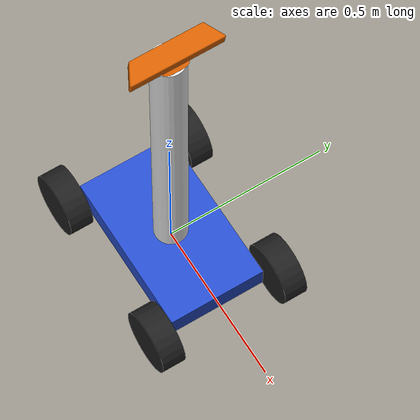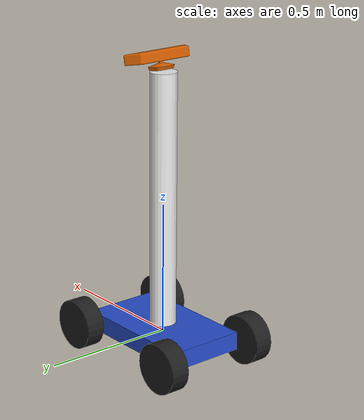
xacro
<?xml version="1.0" ?>
<robot name="my_robot" xmlns:xacro="http://www.ros.org/wiki/xacro">
  <!-- PROPERTY LIST -->
  <!--All units in m-kg-s-radians unit system -->
  <xacro:property name="M_PI" value="3.1415926535897931" />
  <xacro:property name="M_PI_2" value="1.570796327" />
  <xacro:property name="DEG_TO_RAD" value="0.017453293" />

  <!-- FILE INCLUDES -->
  <xacro:include filename="$(find my_robot)/urdf/materials.xacro" />
  <xacro:include filename="$(find my_robot)/urdf/my_robot.gazebo" />
  <xacro:include filename="$(find my_robot)/urdf/macros.xacro" />

    <!-- Camera tilt of the wheelchair -->
  <xacro:property name="tilt" value="0.174533" /> <!-- 10 degree-->

    <!-- Main Chassis Box Dimensions -->
    <xacro:property name="chassis_length" value="0.5" />
    <xacro:property name="chassis_width" value="0.3" />
    <xacro:property name="chassis_height" value="0.07" />
    <xacro:property name="chassis_mass" value="5.5" /><!-- in kg-->

  <!-- Wheels  Property-->
  <xacro:property name="wheel_radius" value="0.095" />
  <xacro:property name="wheel_length" value="0.072" />
  <xacro:property name="wheel_mass" value="0.82" /> <!-- in kg-->
  <xacro:property name="wheel_x_travel" value="${chassis_length/2.0}" /> <!-- in kg-->
  <xacro:property name="wheel_y_travel" value="0.2" /> <!-- in kg-->

    <!-- caster wheel radius and height -->
  <!-- caster wheel mass -->

  <!-- Main Body Cylinder    -->
 <xacro:property name="cylinder_height" value="1" />
 <xacro:property name="cylinder_radius" value="0.05" />
 <xacro:property name="cylinder_mass" value="0.5" /> <!-- in kg-->

    <!-- BASE-FOOTPRINT -->
    <!-- base_footprint is a fictitious link(frame) that is on the ground right below base_link origin -->
    <link name="base_footprint"/>

    <joint name="base_footprint_joint" type="fixed">
        <parent link="base_footprint"/>
        <child link="link_chassis" />
    </joint>

    <link name="link_chassis">
        <inertial>
            <mass value="${chassis_mass}"/>
            <origin rpy="0 0 0" xyz="0 0 0.1"/>
            <inertia ixx="0.0395416666667" ixy="0" ixz="0" iyy="0.106208333333" iyz="0" izz="0.106208333333"/>
        </inertial>
        <!-- body -->
        <collision name="collision_chassis">
            <geometry>
            <box size="${chassis_length} ${chassis_width} ${chassis_height}"/>
            </geometry>
        </collision>
        <visual>
            <origin rpy="0 0 0" xyz="0 0 0"/>
            <geometry>
            <box size="${chassis_length} ${chassis_width} ${chassis_height}"/>
            </geometry>
            <material name="blue"/>
        </visual>
    </link>

<!--          iyy="0.001" iyz="0.0"-->

<!--    &lt;!&ndash;Added for ball linke joint &ndash;&gt;-->
<!--                     iyy="0.001" iyz="0.0"-->

<!--                     iyy="0.001" iyz="0.0"-->

    <link name="sensor_base">
        <inertial>
            <origin xyz="0 0 ${cylinder_height/2.0}" rpy="0 0 0" />
            <mass value="${cylinder_mass}" />
            <xacro:cylinder_inertia mass="${cylinder_mass}" r="${cylinder_radius}" l="${cylinder_height}" />
        </inertial>
        <visual>
            <origin xyz="0 0 ${cylinder_height/2.0}" rpy="0 0 0" />
            <geometry>
            <cylinder radius="${cylinder_radius}" length="${cylinder_height}"/>
            </geometry>
            <material name="white" />
        </visual>
        <collision>
            <origin xyz="0 0 ${cylinder_height/2.0}" rpy="0 0 0"/>
            <geometry>
            <cylinder radius="${cylinder_radius}" length="${cylinder_height}"/>
            </geometry>
        </collision>
    </link>

   <joint name="joint_sensor_laser" type="fixed">
       <origin xyz="0.0 0 0" rpy="0 0 0"/>
       <parent link="link_chassis"/>
       <child link="sensor_base"/>
   </joint>

    <!-- Kinect -->
    <joint name="camera_rgb_joint" type="fixed">
        <origin xyz="0.05 0 ${cylinder_height+0.05}" rpy="0 ${tilt} 0"/>
        <parent link="sensor_base"/>
        <child link="camera_rgb_frame" />
    </joint>

    <link name="camera_rgb_frame"/>

    <joint name="camera_rgb_optical_joint" type="fixed">
        <origin xyz="0 0 0" rpy="${-M_PI/2} 0 ${-M_PI/2}" />
        <parent link="camera_rgb_frame" />
        <child link="camera_rgb_optical_frame" />
    </joint>

    <link name="camera_rgb_optical_frame"/>

    <joint name="camera_joint" type="fixed">
        <origin xyz="-0.031 0 -0.016" rpy="0 0 0"/>
        <parent link="camera_rgb_frame"/>
        <child link="camera_link"/>
    </joint>

    <link name="camera_link">
        <visual>
            <origin xyz="0 0 0" rpy="0 0 ${M_PI/2}"/>
            <geometry>
                <mesh filename="package://my_robot/meshes/kinect.dae"/>
            </geometry>
        </visual>
        <collision>
            <origin xyz="0.0 0.0 0.0" rpy="0 0 0"/>
            <geometry>
             <box size="0.07271 0.27794 0.073"/>
            </geometry>
        </collision>
        <inertial>
            <mass value="0.564" />
            <origin xyz="0 0 0" />
            <inertia ixx="0.003881243" ixy="0.0" ixz="0.0"
                    iyy="0.000498940" iyz="0.0"
                    izz="0.003879257" />
        </inertial>
    </link>

    <joint name="camera_depth_joint" type="fixed">
        <origin xyz="0 0 0" rpy="0 0 0" />
        <parent link="camera_rgb_frame" />
        <child link="camera_depth_frame" />
    </joint>

    <link name="camera_depth_frame"/>

    <joint name="camera_depth_optical_joint" type="fixed">
        <origin xyz="0 0 0" rpy="${-M_PI/2} 0 ${-M_PI/2}" />
        <parent link="camera_depth_frame" />
        <child link="camera_depth_optical_frame" />
    </joint>

    <link name="camera_depth_optical_frame"/>

    <xacro:link_wheel name="link_right_rear_wheel" radius="${wheel_radius}" length="${wheel_length}" mass="${wheel_mass}" />
    <xacro:joint_wheel name="joint_right_rear_wheel" child="link_right_rear_wheel" origin_xyz="-${wheel_x_travel} ${wheel_y_travel} 0" />

    <xacro:link_wheel name="link_left_rear_wheel" radius="${wheel_radius}" length="${wheel_length}" mass="${wheel_mass}" />
    <xacro:joint_wheel name="joint_left_rear_wheel" child="link_left_rear_wheel" origin_xyz="-${wheel_x_travel} -${wheel_y_travel} 0" />

    <xacro:link_wheel name="link_right_front_wheel" radius="${wheel_radius}" length="${wheel_length}" mass="${wheel_mass}" />
    <xacro:joint_wheel name="joint_right_front_wheel" child="link_right_front_wheel" origin_xyz=" ${wheel_x_travel} ${wheel_y_travel} 0" />

    <xacro:link_wheel name="link_left_front_wheel" radius="${wheel_radius}" length="${wheel_length}" mass="${wheel_mass}" />
    <xacro:joint_wheel name="joint_left_front_wheel" child="link_left_front_wheel" origin_xyz=" ${wheel_x_travel} -${wheel_y_travel} 0" />

</robot>

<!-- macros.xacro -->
<robot xmlns:xacro="http://www.ros.org/wiki/xacro">

    <!-- These constants are used to simulate a  Savox SV-0235MG servo operated at
     7.4 V. servo_stall_torque is measured in N m. servo_no_load_speed is
     measured in rad/s. -->
    <!-- produces 486.1 oz-in = 3.432620346181713 n-m of torque -->
    <!-- no load speed 0.13 sec/60 deg -> (1/0.13)*60 deg/sec = 8.05536578 rad/s -->
    <xacro:property name="servo_stall_torque" value="3.432620346181713"/>
    <xacro:property name="servo_no_load_speed" value="8.05536578"/>
    <xacro:property name="PI" value="3.14"/>

    <xacro:macro name="cylinder_inertia_new" params ="m r h">
        <inertial>
            <mass value="${m}"/>
            <inertia ixx="${m*(3*r*r+h*h)/12}"  ixy="0.0" ixz="0.0"
                     iyy="${m*(3*r*r+h*h)/12}"  iyz= "0.0"
                     izz="${m*r*r/2}"/>
        </inertial>
    </xacro:macro>

    <xacro:macro name="cylinder_inertia" params="mass r l">
          <inertia  ixx="${mass*(3*r*r+l*l)/12}" ixy = "0" ixz = "0"
                    iyy="${mass*(3*r*r+l*l)/12}" iyz = "0"
                    izz="${mass*(r*r)/2}" />
    </xacro:macro>
    <xacro:macro name= "inertial_matrix" params="mass">
        <inertial>
            <mass value="${mass}"/>
            <inertia ixx="1.0" ixy="0.0"
                     iyy="1.0" iyz="0.0"
                     izz="1.0" ixz="0.0"/>
        </inertial>
    </xacro:macro>

    <!--transmission block-->

    <xacro:macro name="Transmission_block" params="joint_name">
        <transmission name="${joint_name}_trans">
            <type>transmission_interface/SimpleTransmission</type>
            <joint name="${joint_name}">
                <hardwareInterface>PositionJointInterface</hardwareInterface>
            </joint>
            <actuator name="${joint_name}_motor">
                <mechanicalReduction>1</mechanicalReduction>
            </actuator>
        </transmission>
    </xacro:macro>

    <xacro:macro name="link_wheel" params="name radius length mass">
        <link name="${name}">
            <inertial>
              <mass value="${mass}"/>
              <origin rpy="0 1.5707 1.5707" xyz="0 0 0"/>
              <xacro:cylinder_inertia  mass="${mass}" r="${radius}" l="${length}" />
            </inertial>
            <collision name="${name}_collision">
              <origin rpy="0 1.5707 1.5707" xyz="0 0 0"/>
              <geometry>
                <cylinder length="${length}" radius="${radius}"/>
              </geometry>
            </collision>
            <visual name="${name}_visual">
              <origin rpy="0 1.5707 1.5707" xyz="0 0 0"/>
              <geometry>
                <cylinder length="${length}" radius="${radius}"/>
              </geometry>
              <material name="black" />
            </visual>
        </link>
    </xacro:macro>

    <xacro:macro name="joint_wheel" params="name child origin_xyz">
      <joint name="${name}" type="continuous">
        <origin rpy="0 0 0" xyz="${origin_xyz}"/>
        <child link="${child}"/>
        <parent link="link_chassis"/>
        <axis rpy="0 0 0" xyz="0 1 0"/>
        <limit effort="${servo_stall_torque}" velocity="${servo_no_load_speed}"/>
        <joint_properties damping="0.0" friction="0.0"/>
      </joint>
    </xacro:macro>

    <!-- ///////////////////      Wheels      ///////////////////////   -->

    <xacro:macro name="wheel" params= "prefix suffix origin_xyz wheel_radius wheel_width wheel_mass">
        <link name= "${prefix}_${suffix}_wheel">
            <visual name="${prefix}_${suffix}_wheel_visual">
                <origin rpy= "${PI/2} 0 0" xyz= "0 0 0"/>
                <geometry><cylinder length="${wheel_width}" radius= "${wheel_radius}"/></geometry>
                <material name= "black"/>
            </visual>
            <collision name="${prefix}_${suffix}_wheel_collision">
                <origin rpy= "${PI/2} 0 0" xyz= "0 0 0"/>
                <geometry><cylinder length="${wheel_width}" radius= "${wheel_radius}"/></geometry>
            </collision>
            <xacro:cylinder_inertia_new m="${wheel_mass}" r="${wheel_radius}" h="${wheel_width}"/>
        </link>

        <link name= "${prefix}_${suffix}_wheel1">
            <visual>
                <origin rpy= "0  ${PI/2} 0" xyz= "0 0 0"/>
                <geometry><mesh filename="package://my_robot/meshes/tyre11.dae"/></geometry>
                <material name= "Black"/>
            </visual>
            <collision>
                <origin rpy= "0 ${PI/2} 0" xyz= "0 0 0"/>
                <geometry><mesh filename="package://my_robot/meshes/tyre11.dae"/></geometry>
            </collision>
            <xacro:cylinder_inertia_new m="${wheel_mass}" r="${wheel_radius}" h="${wheel_width}"/>
        </link>

        <gazebo reference ="${prefix}_${suffix}_wheel1">
            <material>Gazebo/Black</material>
            <turnGravityOff>false</turnGravityOff>
        </gazebo>

        <joint name="${prefix}_${suffix}_wheel_joint1" type= "fixed">
            <parent link="${prefix}_${suffix}_wheel"/>
            <child link= "${prefix}_${suffix}_wheel1"/>
            <origin xyz="0 0 0"  rpy="0 0 0"/>
        </joint>

        <joint name="${prefix}_${suffix}_wheel_joint" type="continuous">
            <parent link= "link_chassis"/>
            <child link= "${prefix}_${suffix}_wheel"/>
            <origin xyz= "${origin_xyz}" rpy="0 0 0"/>
            <axis xyz="0 1 0"/>
            <limit effort= "100" velocity="100"/>
            <dynamics damping="0.0" friction="0.0"/>
        </joint>

        <transmission name="${prefix}_${suffix}_wheel_trans">
            <type>transmission_interface/SimpleTransmission</type>
            <actuator name="${prefix}_${suffix}_wheel_motor">
                <hardwareInterface>EffortJointInterface</hardwareInterface>
                <mechanicalReduction>1</mechanicalReduction>
            </actuator>
            <joint name="${prefix}_${suffix}_wheel_joint">
                <hardwareInterface>hardware_interface/VelocityJointInterface</hardwareInterface>
            </joint>
        </transmission>
    </xacro:macro>

</robot>
